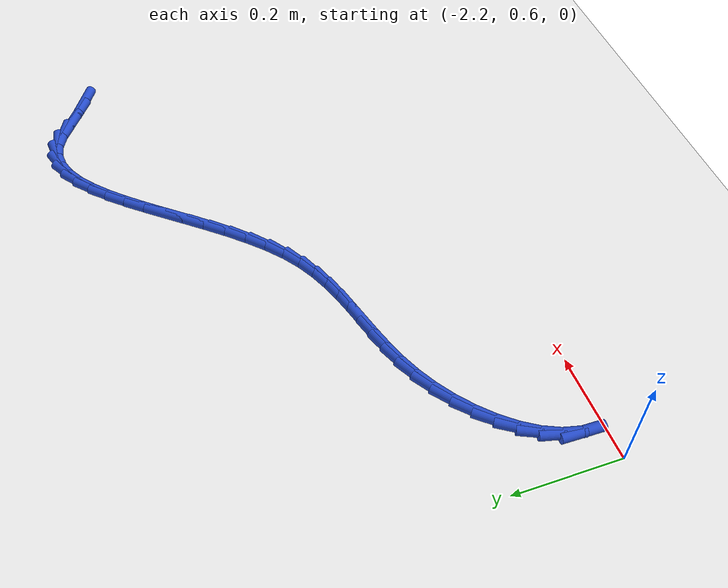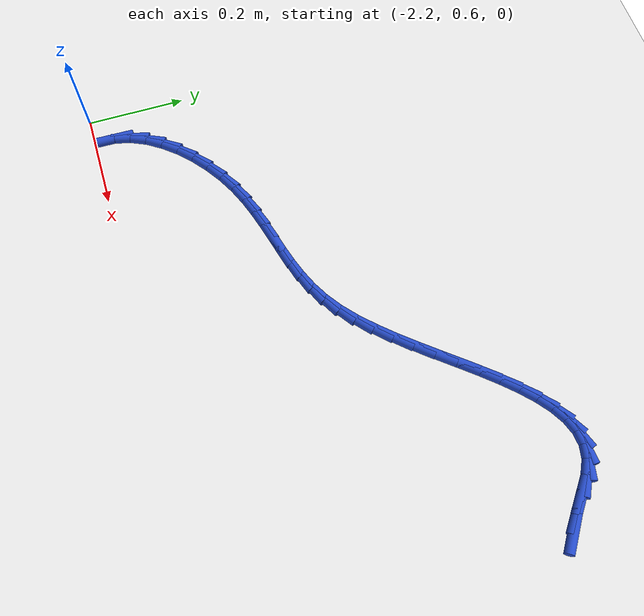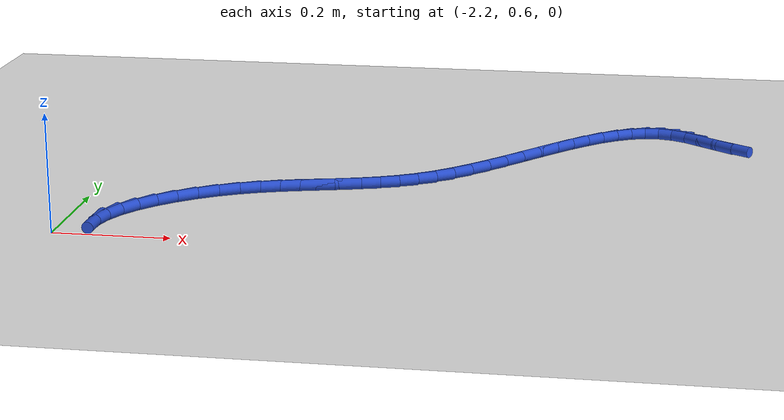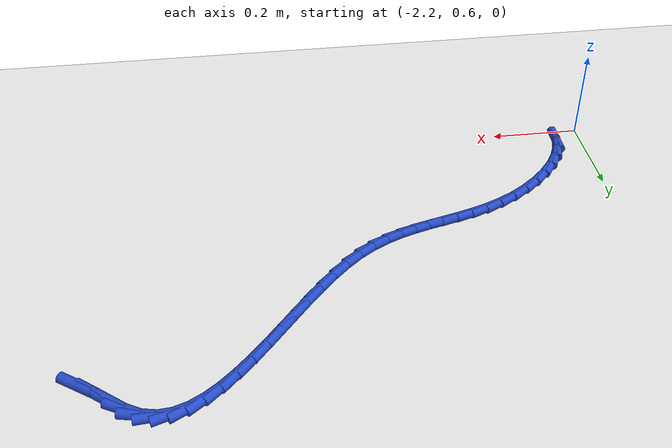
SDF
<sdf version="1.6">
 <world name="default">
  <model name="ground_plane">
   <static>1</static>
   <link name="link">
    <collision name="collision">
     <geometry><plane><normal>0 0 1</normal><size>100 100</size></plane></geometry>
     <surface><friction><ode><mu>100</mu><mu2>50</mu2></ode></friction></surface>
    </collision>
    <visual name="visual">
     <cast_shadows>0</cast_shadows>
     <geometry><plane><normal>0 0 1</normal><size>100 100</size></plane></geometry>
     <material>
      <script><uri>file://media/materials/scripts/gazebo.material</uri><name>Gazebo/WhiteGlow</name></script>
     </material>
    </visual>
   </link>
  </model>
  <model name="line">
   <link name="link_55">
    <pose>-1.11013815729406 1.2359391859852888 0.01 0 1.57 -0.5912077204481779</pose>
    <collision name="collision">
     <geometry><cylinder><radius>0.01</radius><length>0.08</length></cylinder></geometry>
    </collision>
    <visual name="visual">
     <material>
      <script><name>Gazebo/Blue</name><uri>file://media/materials/scripts/gazebo.material</uri></script>
     </material>
     <geometry><cylinder><radius>0.01</radius><length>0.08</length></cylinder></geometry>
    </visual>
   </link>
   <link name="link_56">
    <pose>-1.1385784738504447 1.2550313470861059 0.01 0 1.57 -0.6509662323063921</pose>
    <collision name="collision">
     <geometry><cylinder><radius>0.01</radius><length>0.08</length></cylinder></geometry>
    </collision>
    <visual name="visual">
     <material>
      <script><name>Gazebo/Blue</name><uri>file://media/materials/scripts/gazebo.material</uri></script>
     </material>
     <geometry><cylinder><radius>0.01</radius><length>0.08</length></cylinder></geometry>
    </visual>
   </link>
   <link name="link_57">
    <pose>-1.1664060476502955 1.276228449013121 0.01 0 1.57 -0.6556699043030959</pose>
    <collision name="collision">
     <geometry><cylinder><radius>0.01</radius><length>0.08</length></cylinder></geometry>
    </collision>
    <visual name="visual">
     <material>
      <script><name>Gazebo/Blue</name><uri>file://media/materials/scripts/gazebo.material</uri></script>
     </material>
     <geometry><cylinder><radius>0.01</radius><length>0.08</length></cylinder></geometry>
    </visual>
   </link>
   <link name="link_58">
    <pose>-1.1936886931522523 1.2972139824147146 0.01 0 1.57 -0.48501228219277687</pose>
    <collision name="collision">
     <geometry><cylinder><radius>0.01</radius><length>0.08</length></cylinder></geometry>
    </collision>
    <visual name="visual">
     <material>
      <script><name>Gazebo/Blue</name><uri>file://media/materials/scripts/gazebo.material</uri></script>
     </material>
     <geometry><cylinder><radius>0.01</radius><length>0.08</length></cylinder></geometry>
    </visual>
   </link>
   <link name="link_59">
    <pose>-1.2206261515871513 1.3114099786957087 0.01 0 1.57 -0.20951843793595495</pose>
    <collision name="collision">
     <geometry><cylinder><radius>0.01</radius><length>0.08</length></cylinder></geometry>
    </collision>
    <visual name="visual">
     <material>
      <script><name>Gazebo/Blue</name><uri>file://media/materials/scripts/gazebo.material</uri></script>
     </material>
     <geometry><cylinder><radius>0.01</radius><length>0.08</length></cylinder></geometry>
    </visual>
   </link>
   <link name="link_60">
    <pose>-1.2473273559740614 1.3170876976100212 0.01 0 1.57 0.07556879433054528</pose>
    <collision name="collision">
     <geometry><cylinder><radius>0.01</radius><length>0.08</length></cylinder></geometry>
    </collision>
    <visual name="visual">
     <material>
      <script><name>Gazebo/Blue</name><uri>file://media/materials/scripts/gazebo.material</uri></script>
     </material>
     <geometry><cylinder><radius>0.01</radius><length>0.08</length></cylinder></geometry>
    </visual>
   </link>
   <link name="link_61">
    <pose>-1.273850293239914 1.3150795671908975 0.01 0 1.57 0.32331235466705427</pose>
    <collision name="collision">
     <geometry><cylinder><radius>0.01</radius><length>0.08</length></cylinder></geometry>
    </collision>
    <visual name="visual">
     <material>
      <script><name>Gazebo/Blue</name><uri>file://media/materials/scripts/gazebo.material</uri></script>
     </material>
     <geometry><cylinder><radius>0.01</radius><length>0.08</length></cylinder></geometry>
    </visual>
   </link>
   <link name="link_62">
    <pose>-1.3002526534437602 1.3062329396506094 0.01 0 1.57 0.5130185021952725</pose>
    <collision name="collision">
     <geometry><cylinder><radius>0.01</radius><length>0.08</length></cylinder></geometry>
    </collision>
    <visual name="visual">
     <material>
      <script><name>Gazebo/Blue</name><uri>file://media/materials/scripts/gazebo.material</uri></script>
     </material>
     <geometry><cylinder><radius>0.01</radius><length>0.08</length></cylinder></geometry>
    </visual>
   </link>
   <link name="link_63">
    <pose>-1.32659212664465 1.2913951672014277 0.01 0 1.57 0.6490880651406916</pose>
    <collision name="collision">
     <geometry><cylinder><radius>0.01</radius><length>0.08</length></cylinder></geometry>
    </collision>
    <visual name="visual">
     <material>
      <script><name>Gazebo/Blue</name><uri>file://media/materials/scripts/gazebo.material</uri></script>
     </material>
     <geometry><cylinder><radius>0.01</radius><length>0.08</length></cylinder></geometry>
    </visual>
   </link>
   <link name="link_64">
    <pose>-1.3529264029016337 1.2714136020556235 0.01 0 1.57 0.7438002824619205</pose>
    <collision name="collision">
     <geometry><cylinder><radius>0.01</radius><length>0.08</length></cylinder></geometry>
    </collision>
    <visual name="visual">
     <material>
      <script><name>Gazebo/Blue</name><uri>file://media/materials/scripts/gazebo.material</uri></script>
     </material>
     <geometry><cylinder><radius>0.01</radius><length>0.08</length></cylinder></geometry>
    </visual>
   </link>
   <link name="link_65">
    <pose>-1.379313172273763 1.247135596425469 0.01 0 1.57 0.8080805425991572</pose>
    <collision name="collision">
     <geometry><cylinder><radius>0.01</radius><length>0.08</length></cylinder></geometry>
    </collision>
    <visual name="visual">
     <material>
      <script><name>Gazebo/Blue</name><uri>file://media/materials/scripts/gazebo.material</uri></script>
     </material>
     <geometry><cylinder><radius>0.01</radius><length>0.08</length></cylinder></geometry>
    </visual>
   </link>
   <link name="link_66">
    <pose>-1.4058101248200883 1.2194085025232342 0.01 0 1.57 0.8495977469195756</pose>
    <collision name="collision">
     <geometry><cylinder><radius>0.01</radius><length>0.08</length></cylinder></geometry>
    </collision>
    <visual name="visual">
     <material>
      <script><name>Gazebo/Blue</name><uri>file://media/materials/scripts/gazebo.material</uri></script>
     </material>
     <geometry><cylinder><radius>0.01</radius><length>0.08</length></cylinder></geometry>
    </visual>
   </link>
   <link name="link_67">
    <pose>-1.432474950599659 1.189079672561191 0.01 0 1.57 0.8732250197811251</pose>
    <collision name="collision">
     <geometry><cylinder><radius>0.01</radius><length>0.08</length></cylinder></geometry>
    </collision>
    <visual name="visual">
     <material>
      <script><name>Gazebo/Blue</name><uri>file://media/materials/scripts/gazebo.material</uri></script>
     </material>
     <geometry><cylinder><radius>0.01</radius><length>0.08</length></cylinder></geometry>
    </visual>
   </link>
   <link name="link_68">
    <pose>-1.4593653396715274 1.1569964587516102 0.01 0 1.57 0.8817779321621837</pose>
    <collision name="collision">
     <geometry><cylinder><radius>0.01</radius><length>0.08</length></cylinder></geometry>
    </collision>
    <visual name="visual">
     <material>
      <script><name>Gazebo/Blue</name><uri>file://media/materials/scripts/gazebo.material</uri></script>
     </material>
     <geometry><cylinder><radius>0.01</radius><length>0.08</length></cylinder></geometry>
    </visual>
   </link>
   <link name="link_69">
    <pose>-1.4865389820947428 1.1240062133067636 0.01 0 1.57 0.8765407020072276</pose>
    <collision name="collision">
     <geometry><cylinder><radius>0.01</radius><length>0.08</length></cylinder></geometry>
    </collision>
    <visual name="visual">
     <material>
      <script><name>Gazebo/Blue</name><uri>file://media/materials/scripts/gazebo.material</uri></script>
     </material>
     <geometry><cylinder><radius>0.01</radius><length>0.08</length></cylinder></geometry>
    </visual>
   </link>
   <link name="link_70">
    <pose>-1.5140535679283562 1.0909562884389212 0.01 0 1.57 0.8575452391647471</pose>
    <collision name="collision">
     <geometry><cylinder><radius>0.01</radius><length>0.08</length></cylinder></geometry>
    </collision>
    <visual name="visual">
     <material>
      <script><name>Gazebo/Blue</name><uri>file://media/materials/scripts/gazebo.material</uri></script>
     </material>
     <geometry><cylinder><radius>0.01</radius><length>0.08</length></cylinder></geometry>
    </visual>
   </link>
   <link name="link_71">
    <pose>-1.5419667872314182 1.0586940363603556 0.01 0 1.57 0.8236474292374899</pose>
    <collision name="collision">
     <geometry><cylinder><radius>0.01</radius><length>0.08</length></cylinder></geometry>
    </collision>
    <visual name="visual">
     <material>
      <script><name>Gazebo/Blue</name><uri>file://media/materials/scripts/gazebo.material</uri></script>
     </material>
     <geometry><cylinder><radius>0.01</radius><length>0.08</length></cylinder></geometry>
    </visual>
   </link>
   <link name="link_72">
    <pose>-1.5703363300629802 1.0280668092833372 0.01 0 1.57 0.7724455790134986</pose>
    <collision name="collision">
     <geometry><cylinder><radius>0.01</radius><length>0.08</length></cylinder></geometry>
    </collision>
    <visual name="visual">
     <material>
      <script><name>Gazebo/Blue</name><uri>file://media/materials/scripts/gazebo.material</uri></script>
     </material>
     <geometry><cylinder><radius>0.01</radius><length>0.08</length></cylinder></geometry>
    </visual>
   </link>
   <link name="link_73">
    <pose>-1.5992198864820912 0.9999219594201376 0.01 0 1.57 0.7001051922625913</pose>
    <collision name="collision">
     <geometry><cylinder><radius>0.01</radius><length>0.08</length></cylinder></geometry>
    </collision>
    <visual name="visual">
     <material>
      <script><name>Gazebo/Blue</name><uri>file://media/materials/scripts/gazebo.material</uri></script>
     </material>
     <geometry><cylinder><radius>0.01</radius><length>0.08</length></cylinder></geometry>
    </visual>
   </link>
   <link name="link_74">
    <pose>-1.6286751465478027 0.9751068389830271 0.01 0 1.57 0.6020954955467981</pose>
    <collision name="collision">
     <geometry><cylinder><radius>0.01</radius><length>0.08</length></cylinder></geometry>
    </collision>
    <visual name="visual">
     <material>
      <script><name>Gazebo/Blue</name><uri>file://media/materials/scripts/gazebo.material</uri></script>
     </material>
     <geometry><cylinder><radius>0.01</radius><length>0.08</length></cylinder></geometry>
    </visual>
   </link>
   <link name="link_75">
    <pose>-1.658757115866552 0.9544339830134573 0.01 0 1.57 0.4939117480487549</pose>
    <collision name="collision">
     <geometry><cylinder><radius>0.01</radius><length>0.08</length></cylinder></geometry>
    </collision>
    <visual name="visual">
     <material>
      <script><name>Gazebo/Blue</name><uri>file://media/materials/scripts/gazebo.material</uri></script>
     </material>
     <geometry><cylinder><radius>0.01</radius><length>0.08</length></cylinder></geometry>
    </visual>
   </link>
   <link name="link_76">
    <pose>-1.689458184817036 0.9379038112376392 0.01 0 1.57 0.39982257220621914</pose>
    <collision name="collision">
     <geometry><cylinder><radius>0.01</radius><length>0.08</length></cylinder></geometry>
    </collision>
    <visual name="visual">
     <material>
      <script><name>Gazebo/Blue</name><uri>file://media/materials/scripts/gazebo.material</uri></script>
     </material>
     <geometry><cylinder><radius>0.01</radius><length>0.08</length></cylinder></geometry>
    </visual>
   </link>
   <link name="link_77">
    <pose>-1.7207076397783674 0.9246982887284544 0.01 0 1.57 0.32628874909677225</pose>
    <collision name="collision">
     <geometry><cylinder><radius>0.01</radius><length>0.08</length></cylinder></geometry>
    </collision>
    <visual name="visual">
     <material>
      <script><name>Gazebo/Blue</name><uri>file://media/materials/scripts/gazebo.material</uri></script>
     </material>
     <geometry><cylinder><radius>0.01</radius><length>0.08</length></cylinder></geometry>
    </visual>
   </link>
   <link name="link_78">
    <pose>-1.752431984920827 0.913963295496315 0.01 0 1.57 0.2765663768565235</pose>
    <collision name="collision">
     <geometry><cylinder><radius>0.01</radius><length>0.08</length></cylinder></geometry>
    </collision>
    <visual name="visual">
     <material>
      <script><name>Gazebo/Blue</name><uri>file://media/materials/scripts/gazebo.material</uri></script>
     </material>
     <geometry><cylinder><radius>0.01</radius><length>0.08</length></cylinder></geometry>
    </visual>
   </link>
   <link name="link_79">
    <pose>-1.7845577244146933 0.904844711551633 0.01 0 1.57 0.25200999125385093</pose>
    <collision name="collision">
     <geometry><cylinder><radius>0.01</radius><length>0.08</length></cylinder></geometry>
    </collision>
    <visual name="visual">
     <material>
      <script><name>Gazebo/Blue</name><uri>file://media/materials/scripts/gazebo.material</uri></script>
     </material>
     <geometry><cylinder><radius>0.01</radius><length>0.08</length></cylinder></geometry>
    </visual>
   </link>
   <link name="link_80">
    <pose>-1.8170113624302462 0.8964884169048202 0.01 0 1.57 0.2527646804211723</pose>
    <collision name="collision">
     <geometry><cylinder><radius>0.01</radius><length>0.08</length></cylinder></geometry>
    </collision>
    <visual name="visual">
     <material>
      <script><name>Gazebo/Blue</name><uri>file://media/materials/scripts/gazebo.material</uri></script>
     </material>
     <geometry><cylinder><radius>0.01</radius><length>0.08</length></cylinder></geometry>
    </visual>
   </link>
   <link name="link_81">
    <pose>-1.849719403137765 0.8880402915662887 0.01 0 1.57 0.278221899318455</pose>
    <collision name="collision">
     <geometry><cylinder><radius>0.01</radius><length>0.08</length></cylinder></geometry>
    </collision>
    <visual name="visual">
     <material>
      <script><name>Gazebo/Blue</name><uri>file://media/materials/scripts/gazebo.material</uri></script>
     </material>
     <geometry><cylinder><radius>0.01</radius><length>0.08</length></cylinder></geometry>
    </visual>
   </link>
   <link name="link_82">
    <pose>-1.8826083507075284 0.8786462155464502 0.01 0 1.57 0.3270696576984804</pose>
    <collision name="collision">
     <geometry><cylinder><radius>0.01</radius><length>0.08</length></cylinder></geometry>
    </collision>
    <visual name="visual">
     <material>
      <script><name>Gazebo/Blue</name><uri>file://media/materials/scripts/gazebo.material</uri></script>
     </material>
     <geometry><cylinder><radius>0.01</radius><length>0.08</length></cylinder></geometry>
    </visual>
   </link>
   <link name="link_83">
    <pose>-1.9156047093098176 0.8674520688557166 0.01 0 1.57 0.3970004550298216</pose>
    <collision name="collision">
     <geometry><cylinder><radius>0.01</radius><length>0.08</length></cylinder></geometry>
    </collision>
    <visual name="visual">
     <material>
      <script><name>Gazebo/Blue</name><uri>file://media/materials/scripts/gazebo.material</uri></script>
     </material>
     <geometry><cylinder><radius>0.01</radius><length>0.08</length></cylinder></geometry>
    </visual>
   </link>
   <link name="link_84">
    <pose>-1.9486349831149103 0.8536037315045004 0.01 0 1.57 0.48332251764567724</pose>
    <collision name="collision">
     <geometry><cylinder><radius>0.01</radius><length>0.08</length></cylinder></geometry>
    </collision>
    <visual name="visual">
     <material>
      <script><name>Gazebo/Blue</name><uri>file://media/materials/scripts/gazebo.material</uri></script>
     </material>
     <geometry><cylinder><radius>0.01</radius><length>0.08</length></cylinder></geometry>
    </visual>
   </link>
   <link name="link_85">
    <pose>-1.9815822403161665 0.8363116529851641 0.01 0 1.57 0.5723593689208757</pose>
    <collision name="collision">
     <geometry><cylinder><radius>0.01</radius><length>0.08</length></cylinder></geometry>
    </collision>
    <visual name="visual">
     <material>
      <script><name>Gazebo/Blue</name><uri>file://media/materials/scripts/gazebo.material</uri></script>
     </material>
     <geometry><cylinder><radius>0.01</radius><length>0.08</length></cylinder></geometry>
    </visual>
   </link>
   <link name="link_86">
    <pose>-2.0138235136679787 0.8155385266316577 0.01 0 1.57 0.6613853521207046</pose>
    <collision name="collision">
     <geometry><cylinder><radius>0.01</radius><length>0.08</length></cylinder></geometry>
    </collision>
    <visual name="visual">
     <material>
      <script><name>Gazebo/Blue</name><uri>file://media/materials/scripts/gazebo.material</uri></script>
     </material>
     <geometry><cylinder><radius>0.01</radius><length>0.08</length></cylinder></geometry>
    </visual>
   </link>
   <link name="link_87">
    <pose>-2.0444088420762734 0.7917331364542185 0.01 0 1.57 0.7560950887494892</pose>
    <collision name="collision">
     <geometry><cylinder><radius>0.01</radius><length>0.08</length></cylinder></geometry>
    </collision>
    <visual name="visual">
     <material>
      <script><name>Gazebo/Blue</name><uri>file://media/materials/scripts/gazebo.material</uri></script>
     </material>
     <geometry><cylinder><radius>0.01</radius><length>0.08</length></cylinder></geometry>
    </visual>
   </link>
   <link name="link_88">
    <pose>-2.0723827911678248 0.7653524027322363 0.01 0 1.57 0.862589189192924</pose>
    <collision name="collision">
     <geometry><cylinder><radius>0.01</radius><length>0.08</length></cylinder></geometry>
    </collision>
    <visual name="visual">
     <material>
      <script><name>Gazebo/Blue</name><uri>file://media/materials/scripts/gazebo.material</uri></script>
     </material>
     <geometry><cylinder><radius>0.01</radius><length>0.08</length></cylinder></geometry>
    </visual>
   </link>
   <link name="link_89">
    <pose>-2.0967899265694077 0.7368532457450999 0.01 0 1.57 0.9879119046605255</pose>
    <collision name="collision">
     <geometry><cylinder><radius>0.01</radius><length>0.08</length></cylinder></geometry>
    </collision>
    <visual name="visual">
     <material>
      <script><name>Gazebo/Blue</name><uri>file://media/materials/scripts/gazebo.material</uri></script>
     </material>
     <geometry><cylinder><radius>0.01</radius><length>0.08</length></cylinder></geometry>
    </visual>
   </link>
   <link name="link_90">
    <pose>-2.116674813907799 0.7066925857722001 0.01 0 1.57 1.1402052388294095</pose>
    <collision name="collision">
     <geometry><cylinder><radius>0.01</radius><length>0.08</length></cylinder></geometry>
    </collision>
    <visual name="visual">
     <material>
      <script><name>Gazebo/Blue</name><uri>file://media/materials/scripts/gazebo.material</uri></script>
     </material>
     <geometry><cylinder><radius>0.01</radius><length>0.08</length></cylinder></geometry>
    </visual>
   </link>
   <link name="link_91">
    <pose>-2.131082018809775 0.6753273430929262 0.01 0 1.57 1.3274049931926344</pose>
    <collision name="collision">
     <geometry><cylinder><radius>0.01</radius><length>0.08</length></cylinder></geometry>
    </collision>
    <visual name="visual">
     <material>
      <script><name>Gazebo/Blue</name><uri>file://media/materials/scripts/gazebo.material</uri></script>
     </material>
     <geometry><cylinder><radius>0.01</radius><length>0.08</length></cylinder></geometry>
    </visual>
   </link>
   <link name="link_92">
    <pose>-2.1390561069021095 0.6432144379866683 0.01 0 1.57 1.5527282005152077</pose>
    <collision name="collision">
     <geometry><cylinder><radius>0.01</radius><length>0.08</length></cylinder></geometry>
    </collision>
    <visual name="visual">
     <material>
      <script><name>Gazebo/Blue</name><uri>file://media/materials/scripts/gazebo.material</uri></script>
     </material>
     <geometry><cylinder><radius>0.01</radius><length>0.08</length></cylinder></geometry>
    </visual>
   </link>
  </model>
 </world>
</sdf>
